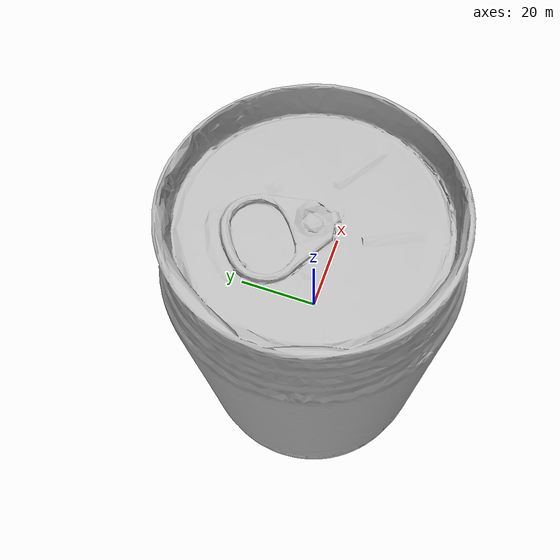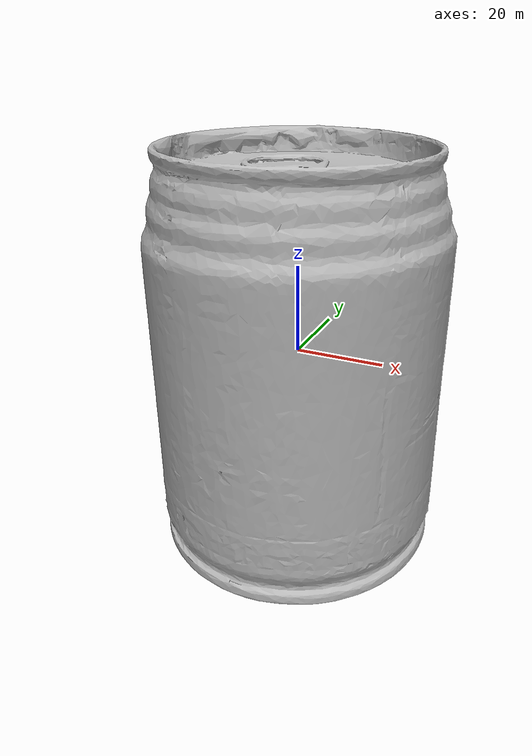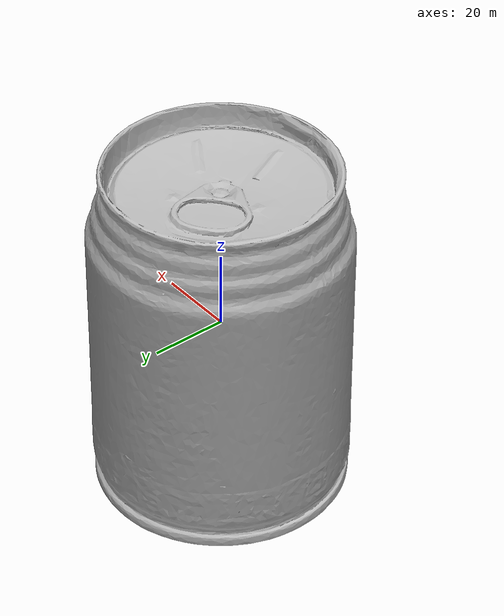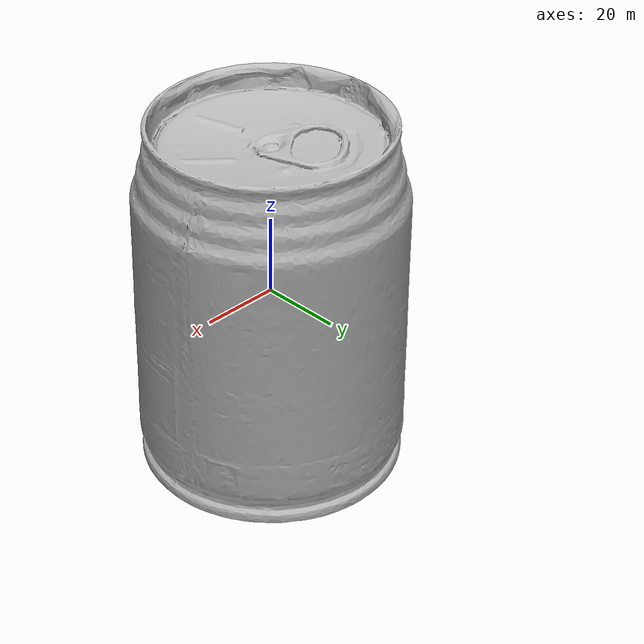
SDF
<sdf version="1.4">
 <world name="default">
  <light name="light1" type="point">
   <pose>0 0 1 0 0 0</pose>
   <diffuse>3 3 3 1</diffuse>
   <specular>3 3 3 1</specular>
  </light>
  <light name="light2" type="point">
   <pose>0 0.5 2 0 0 0</pose>
   <diffuse>1 1 1 1</diffuse>
   <specular>1 1 1 1</specular>
  </light>
  <light name="light3" type="point">
   <pose>0 0.5 2 0 0 0</pose>
   <diffuse>3 3 3 1</diffuse>
   <specular>3 3 3 1</specular>
  </light>
  <scene><ambient>0.7 0.7 0.7</ambient></scene>
  <model name="box1">
   <link name="link_box1">
    <collision name="default">
     <geometry>
      <mesh><uri>model://wooden_puzzle1/collision_meshes/collision.obj</uri><scale>1.0 1.0 1.0</scale></mesh>
     </geometry>
     <surface>
      <friction><ode><mu>0.5</mu><mu2>0.5</mu2></ode></friction>
      <contact><ode><max_vel>0</max_vel><min_depth>0.0001</min_depth><kp>1e8</kp></ode></contact>
     </surface>
    </collision>
    <visual name="default">
     <geometry>
      <mesh><uri>model://wooden_puzzle1/visual_meshes/visual.dae</uri><scale>1.0 1.0 1.0</scale></mesh>
     </geometry>
    </visual>
    <inertial>
     <mass>0.020629532635211945</mass>
     <pose>-0.0001735068071866408 7.972260937094688e-05 -9.191555000143126e-05 -0.07784798349428995 -0.2636160818751574 -0.552872324185161</pose>
     <inertia>
      <ixx>3.8922285e-06</ixx>
      <iyy>3.817302e-06</iyy>
      <izz>3.8628423e-06</izz>
      <ixy>0</ixy>
      <ixz>0</ixz>
      <iyz>0</iyz>
     </inertia>
    </inertial>
   </link>
   <pose>0.2830567955970764 0.08117976039648056 0.01680201292037964 0.01051239858261616 -0.009456252378487977 1.572239696611545</pose>
  </model>
  <model name="box3">
   <link name="link_box3">
    <collision name="default">
     <geometry>
      <mesh><uri>model://wooden_puzzle2/collision_meshes/collision.obj</uri><scale>1.0 1.0 1.0</scale></mesh>
     </geometry>
     <surface>
      <friction><ode><mu>0.5</mu><mu2>0.5</mu2></ode></friction>
      <contact><ode><max_vel>0</max_vel><min_depth>0.0001</min_depth><kp>1e8</kp></ode></contact>
     </surface>
    </collision>
    <visual name="default">
     <geometry>
      <mesh><uri>model://wooden_puzzle2/visual_meshes/visual.dae</uri><scale>1.0 1.0 1.0</scale></mesh>
     </geometry>
    </visual>
    <inertial>
     <mass>0.05583015829324722</mass>
     <pose>2.7402536943554878e-05 4.997663199901581e-05 6.587122334167361e-05 -0.19203199902598803 0.6112853789707493 -0.6338693450254121</pose>
     <inertia>
      <ixx>1.0378231e-05</ixx>
      <iyy>1.06642165e-05</iyy>
      <izz>1.0512509e-05</izz>
      <ixy>0</ixy>
      <ixz>0</ixz>
      <iyz>0</iyz>
     </inertia>
    </inertial>
   </link>
   <pose>0.2795981764793396 -0.1355002075433731 0.01691773161292076 0.02084759524821413 0.0007220822788499685 3.0017063666352066</pose>
  </model>
  <model name="can1">
   <link name="link_can1">
    <collision name="default">
     <geometry>
      <mesh><uri>model://pepsi/collision_meshes/collision.obj</uri><scale>1.0 1.0 1.0</scale></mesh>
     </geometry>
     <surface>
      <friction><ode><mu>0.5</mu><mu2>0.5</mu2></ode></friction>
      <contact><ode><max_vel>0</max_vel><min_depth>0.0001</min_depth><kp>1e8</kp></ode></contact>
     </surface>
    </collision>
    <visual name="default">
     <geometry><mesh><uri>model://pepsi/visual_meshes/visual.dae</uri><scale>1.0 1.0 1.0</scale></mesh></geometry>
    </visual>
    <inertial>
     <mass>0.49348899722099304</mass>
     <pose>-7.5590331107378e-05 2.9931279641459696e-05 -0.0003384356386959553 -0.0010677622415870868 -0.0021735774955872703 0.5673701275352521</pose>
     <inertia>
      <ixx>0.0009831247</ixx>
      <iyy>0.0009824084</iyy>
      <izz>0.00020924417</izz>
      <ixy>0</ixy>
      <ixz>0</ixz>
      <iyz>0</iyz>
     </inertia>
    </inertial>
   </link>
   <pose>0.31298789381980896 0.18033485114574432 0.029225565493106842 1.5661621708474998 -0.4323293525824934 1.3688483214315832</pose>
  </model>
  <model name="can2">
   <link name="link_can2">
    <collision name="default">
     <geometry>
      <mesh><uri>model://redbull/collision_meshes/collision.obj</uri><scale>1.0 1.0 1.0</scale></mesh>
     </geometry>
     <surface>
      <friction><ode><mu>0.5</mu><mu2>0.5</mu2></ode></friction>
      <contact><ode><max_vel>0</max_vel><min_depth>0.0001</min_depth><kp>1e8</kp></ode></contact>
     </surface>
    </collision>
    <visual name="default">
     <geometry>
      <mesh><uri>model://redbull/visual_meshes/visual.dae</uri><scale>1.0 1.0 1.0</scale></mesh>
     </geometry>
    </visual>
    <inertial>
     <mass>0.3443465232849121</mass>
     <pose>-2.2127078409539536e-05 -0.00012659528874792159 -0.0006860987632535398 0.0011367237692686564 -0.010800964902263904 0.5859097418646089</pose>
     <inertia>
      <ixx>0.0003237599</ixx>
      <iyy>0.00032403314</iyy>
      <izz>0.00019212745</izz>
      <ixy>0</ixy>
      <ixz>0</ixz>
      <iyz>0</iyz>
     </inertia>
    </inertial>
   </link>
   <pose>-0.054755713790655136 -0.11819718033075333 0.04638555273413658 -0.010493177854708461 0.007263569216368231 -2.0539553144510467</pose>
  </model>
  <physics type="ode">
   <max_contacts>50</max_contacts>
   <ode>
    <solver><type>quick</type><iters>75</iters></solver>
    <constraints>
     <contact_max_correcting_vel>0</contact_max_correcting_vel>
     <contact_surface_layer>0</contact_surface_layer>
    </constraints>
   </ode>
  </physics>
 </world>
</sdf>
